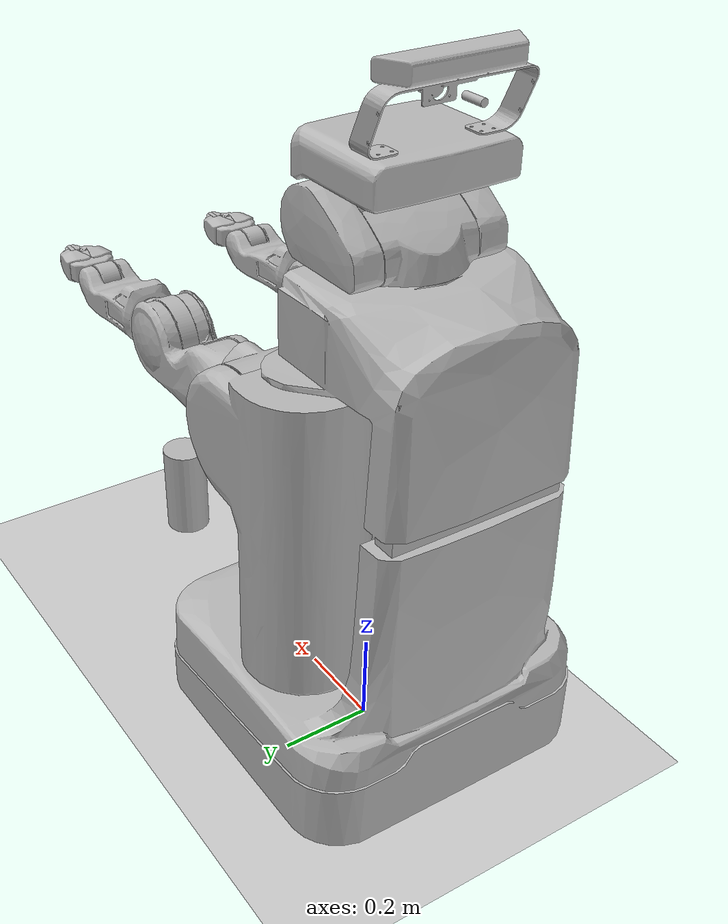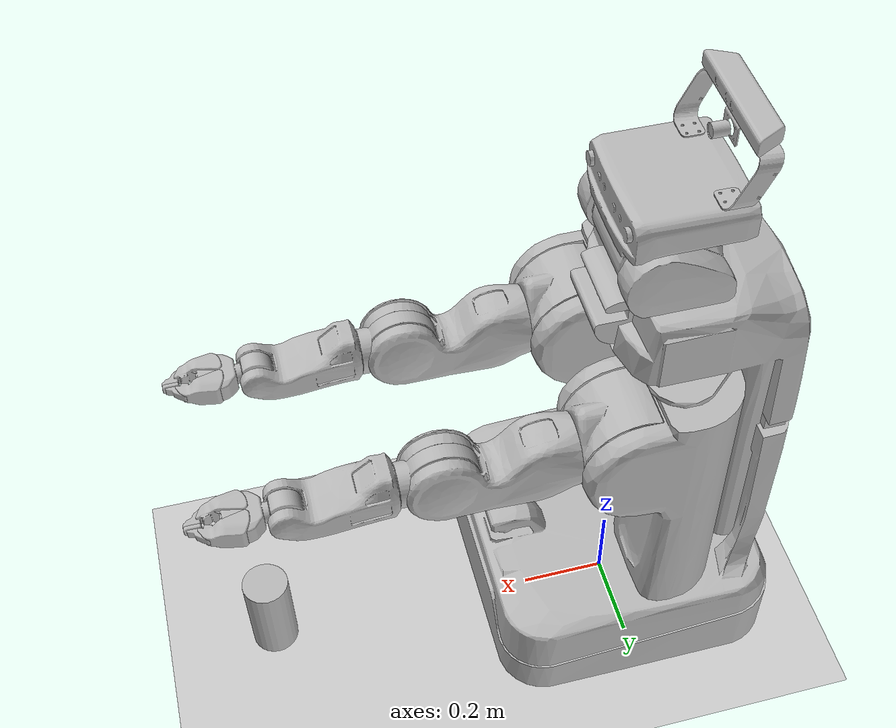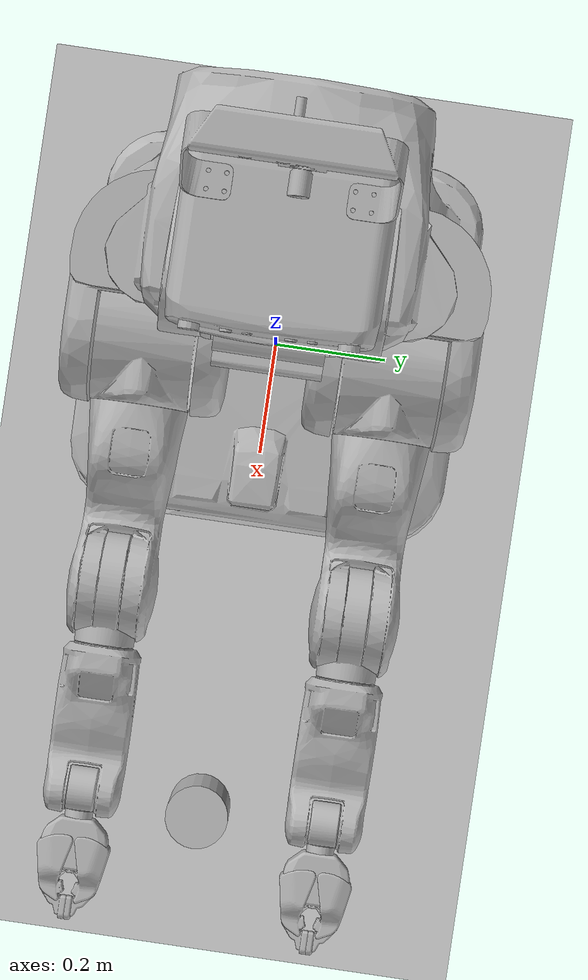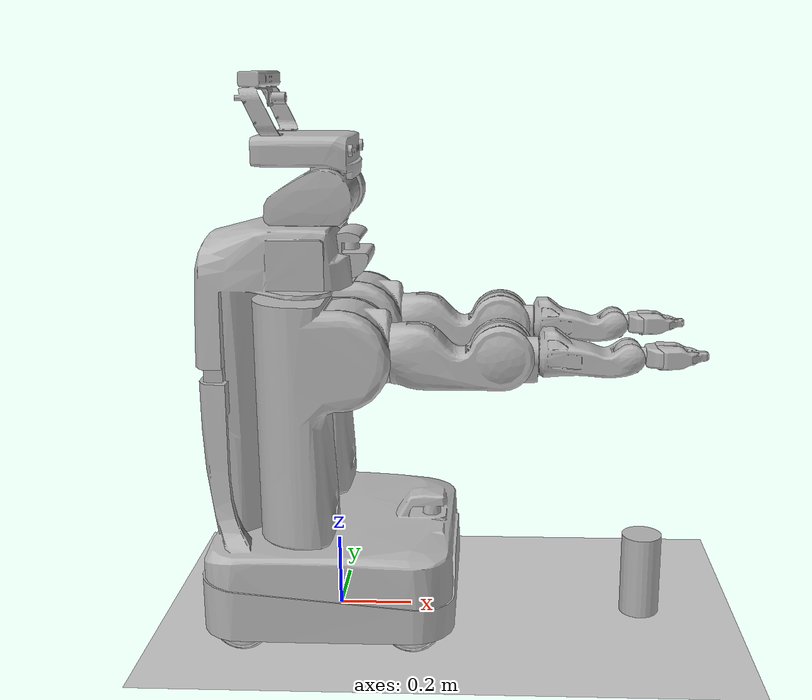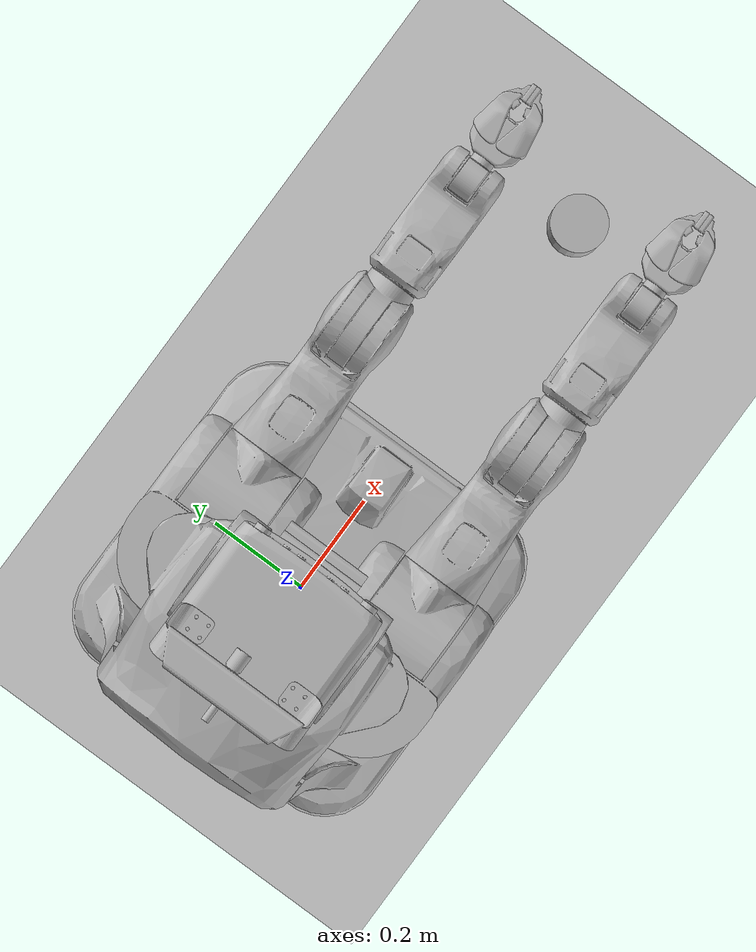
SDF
<?xml version="1.0" ?>
<sdf version="1.5">
  <world name="default">
    <physics type="ode">
      <max_step_size>0.001</max_step_size>
      <real_time_factor>1</real_time_factor>
      <real_time_update_rate>0</real_time_update_rate>
    </physics>
    <!-- Ground -->
    <include>
      <uri>model://texture_ground_plane</uri>
    </include>
    <!-- A global light source -->
    <include>
      <uri>model://sun</uri>
    </include>

    <!-- cartpole model -->
    <model name="pr2">
      <include>
        <uri>model://pr2_noplugin</uri>
      </include>
    </model>

        <model name='beer'>
      <link name='link'>
        <pose frame=''>0 0 0.115 0 -0 0</pose>
        <inertial>
          <mass>0.39</mass>
          <inertia>
            <ixx>0.00058</ixx>
            <ixy>0</ixy>
            <ixz>0</ixz>
            <iyy>0.00058</iyy>
            <iyz>0</iyz>
            <izz>0.00019</izz>
          </inertia>
          <pose frame=''>0 0 0 0 -0 0</pose>
        </inertial>
        <collision name='collision'>
          <geometry>
            <cylinder>
              <radius>0.055</radius>
              <length>0.23</length>
            </cylinder>
          </geometry>
          <max_contacts>10</max_contacts>
          <surface>
            <contact>
              <ode/>
            </contact>
            <bounce/>
            <friction>
              <torsional>
                <ode/>
              </torsional>
              <ode/>
            </friction>
          </surface>
        </collision>
        <visual name='visual'>
          <geometry>
            <cylinder>
              <radius>0.055</radius>
              <length>0.23</length>
            </cylinder>
          </geometry>
          <material>
            <script>
              <uri>model://beer/materials/scripts</uri>
              <uri>model://beer/materials/textures</uri>
              <name>Beer/Diffuse</name>
            </script>
          </material>
        </visual>
        <self_collide>0</self_collide>
        <enable_wind>0</enable_wind>
        <kinematic>0</kinematic>
      </link>
      <pose frame=''>0.849797 -0.014954 0 0 -0 0</pose>
    </model>

  </world>
</sdf>

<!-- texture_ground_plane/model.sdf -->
<sdf version="1.5">
  <model name="ground_plane">
    <static>true</static>
    <link name="link">
      <collision name="collision">
        <geometry>
          <plane>
            <normal>0 0 1</normal>
            <size>100 100</size>
          </plane>
        </geometry>
        <surface>
          <friction>
            <ode>
              <mu>100</mu>
              <mu2>50</mu2>
            </ode>
          </friction>
        </surface>
      </collision>
      <visual name="visual">
        <cast_shadows>false</cast_shadows>
        <geometry>
          <plane>
            <normal>0 0 1</normal>
            <size>100 100</size>
          </plane>
        </geometry>
        <material>
          <script>
            <uri>model://texture_ground_plane/materials/scripts/texture_ground_plane.material</uri>
            <uri>model://texture_ground_plane/materials/textures/ground_texture.png</uri>
            <name>TextureGroundPlane/Image</name>
          </script>
        </material>
      </visual>
    </link>
  </model>
</sdf>
